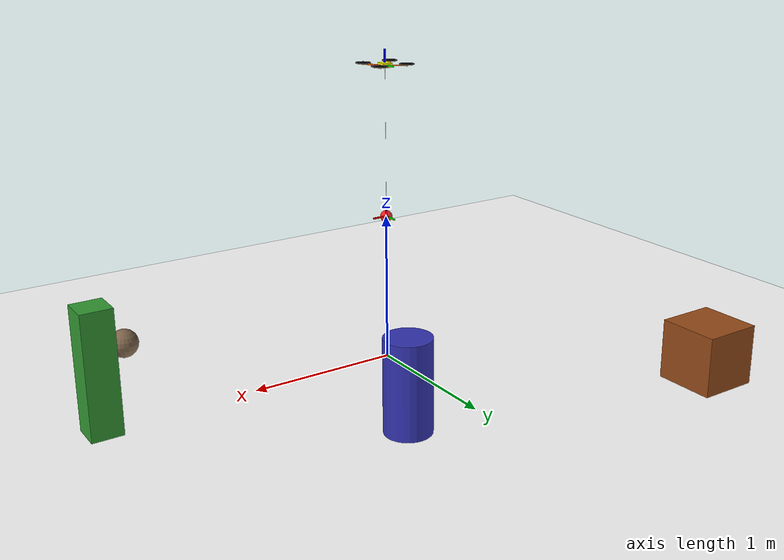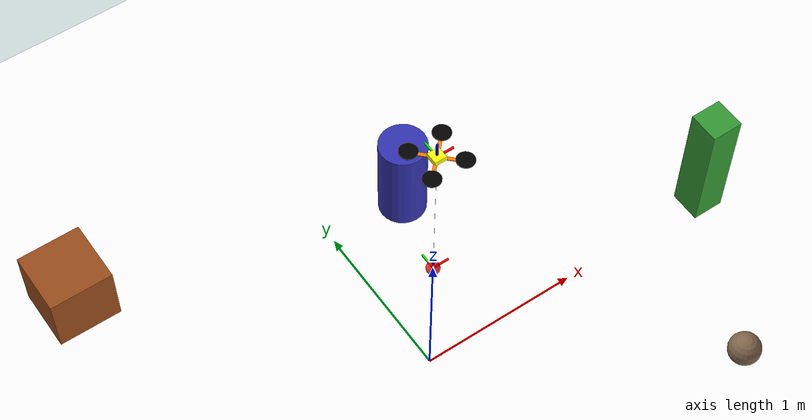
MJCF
<mujoco model="MuJoCo Model">
  <!--Compiler Options-->
  <compiler angle="radian"/>
  <option timestep="0.001" gravity="0 0 -9.81" density="1.225" viscosity="1.8e-05" integrator="RK4" jacobian="sparse">
    <flag energy="enable" contact="enable"/>
  </option>

  <asset>
  <texture name="texchecker" type="2d" builtin="checker" width="512" height="512"
           rgb1="0.8 0.8 0.8" rgb2="0.2 0.2 0.2" />
  <material name="matchecker" texture="texchecker" texrepeat="4 4"
            reflectance="0.2" shininess="0.5" specular="0.3" />
  </asset>

  <default>
        <site type="sphere" rgba="1 0 0 1" size="0.005"/>
        <tendon limited="true" width="0.0005" rgba="1 1 1 1"/>
        <geom friction=".2"/>
  </default>

  <worldbody>
    <light pos="0 0 1.5" dir="0 0 -1" directional="true"/>
    <geom name="floor" type="plane" size="20 20 0.1" material="matchecker"
      rgba="1 1 1 1" friction="1.0 0.005 0.0001" condim="3"/>

      <camera name="camera" pos="0 -5 3" euler="1.57 0 0"/>
    <!-- System Models -->
    <!-- Quadrotor body -->
    <body name="drone" pos="0 0 2" euler="0 0 0">
      <joint name="drone" type="free" damping="0.005" armature="0" pos="0 0 0"/>

      <!-- Core: bright yellow for visibility -->
      <geom name="core" type="box" pos="0 0 0" quat="1. 0. 0. 0" size="0.035 0.035 0.015"
            rgba="1.0 1.0 0.0 1.0" mass=".84" friction="1.0 0.005 0.0001"/>

      <!-- Arms: bright orange -->
      <geom name="a00" type="box" pos=".071 0.071 0.0" size="0.05 0.01 0.0025"
            quat=".924 0.0 0.0 0.383" rgba="1.0 0.5 0.0 1.0" mass=".025"/>
      <geom name="a10" type="box" pos=".071 -0.071 0.0" size="0.05 0.01 0.0025"
            quat=".383 0.0 0.0 0.924" rgba="1.0 0.5 0.0 1.0" mass=".025"/>
      <geom name="a20" type="box" pos="-0.071 -0.071 0.0" size="0.05 0.01 0.0025"
            quat="-.383 0.0 0.0 0.924" rgba="1.0 0.5 0.0 1.0" mass=".025"/>
      <geom name="a30" type="box" pos="-.071 0.071 0.0" size="0.05 0.01 0.0025"
            quat=".924 0.0 0.0 -0.383" rgba="1.0 0.5 0.0 1.0" mass=".025"/>

      <!-- Thrusters: black for contrast -->
      <geom name="thruster0" type="cylinder" pos="0.1 0.1 0.01" size="0.05 0.0025"
            quat="1.0 0.0 0.0 0." rgba="0.0 0.0 0.0 1.0" mass=".015"/>
      <geom name="thruster1" type="cylinder" pos="0.1 -0.1 0.01" size="0.05 0.0025"
            quat="1.0 0.0 0.0 0." rgba="0.0 0.0 0.0 1.0" mass=".015"/>
      <geom name="thruster2" type="cylinder" pos="-0.1 -0.1 0.01" size="0.05 0.0025"
            quat="1.0 0.0 0.0 0." rgba="0.0 0.0 0.0 1.0" mass=".015"/>
      <geom name="thruster3" type="cylinder" pos="-0.1 0.1 0.01" size="0.05 0.0025"
            quat="1.0 0.0 0.0 0." rgba="0.0 0.0 0.0 1.0" mass=".015"/>

      <!-- Axes remain unchanged -->
      <site name="qcX" type="box" pos="0.05 0.0 0.0" size="0.05 0.005 0.005"
            quat="1.0 0.0 0.0 0." rgba="1 0 0 1"/>
      <site name="qcY" type="box" pos="0.0 0.05 0.0" size="0.05 0.005 0.005"
            quat="0.707 0.0 0.0 0.707" rgba="0 1 0 1"/>
      <site name="qcZ" type="box" pos="0.0 0.0 0.05" size="0.05 0.005 0.005"
            quat="-0.707 0.0 0.707 0." rgba="0 0 1 1"/>

      <!-- Actuator sites: bright cyan (unchanged) -->
      <site name="thrust" type="box" pos="0 0 0" size="0.035 0.035 0.015" quat="1.0 0.0 0.0 0." rgba="0 1 1 1"/>
      <site name="rateX" type="box" pos="0 0 0" quat="1. 0. 0. 0." size="0.035 0.035 0.015" rgba="0 1 1 1"/>
      <site name="rateY" type="box" pos="0 0 0" quat="1. 0. 0. 0." size="0.035 0.035 0.015" rgba="0 1 1 1"/>
      <site name="rateZ" type="box" pos="0 0 0" quat="1. 0. 0. 0." size="0.035 0.035 0.015" rgba="0 1 1 1"/>
      <site name="imu" pos="0 0 0"/>
      <site name="payload_point_drone" pos="0.0 0.0 -0.00"/>
      <!-- Add bottom-facing camera here -->
      <camera name="bottom_camera" pos="0.035 0 -0.015" euler="0 0 -1.57"/>
    </body>

    <!-- Payloy only in xyz axis -->
    <body name="payload_ball" pos="0 0 1">
      <joint name="payload_ball" pos="0 0 0" type="free" damping="0.01"/>
      <geom name="payload_ball" size="0.04" type="sphere" rgba="1 0 0 0.8" mass="0.15" friction="1.0 0.005 0.0001"/>
      <site name="payload_point" pos="0.0 0.0 0.04"/>
      <!--  Representation of the body frame   -->
      <site name="load_X" type="box" pos="0.05 0.0 0.0" size="0.05 0.005 0.005" quat=" 1.0 0.0 0.0 0." rgba="1 0 0 1"/>
      <site name="load_Y" type="box" pos="0.0 0.05 0.0" size="0.05 0.005 0.005" quat=" 0.707 0.0 0.0 0.707" rgba="0 1 0 1"/>
      <site name="load_Z" type="box" pos="0.0 0.0 0.05" size="0.05 0.005 0.005" quat="-0.707 0.0 0.707 0." rgba="0 0 1 1"/>
    </body>

      <geom name="rock" type="sphere" pos="1.5 -1.0 0.1" size="0.1" rgba="0.5 0.4 0.3 1"/>
      <geom name="crate" type="box" pos="-1.5 1.5 0.2" size="0.2 0.2 0.2" rgba="0.6 0.3 0.1 1"/>
      <geom name="barrel" type="cylinder" pos="0.5 1.0 0.3" size="0.15 0.3" rgba="0.2 0.2 0.7 1"/>
      <geom name="tall_box" type="box" pos="2.0 0.0 0.4" size="0.1 0.1 0.4" rgba="0.2 0.6 0.2 1"/>

  </worldbody>

      <!--  Actuators of the system   -->
<actuator>
    <motor ctrllimited="true" ctrlrange="0 20.0" gear="0 0. 1. 0. 0. 0." site="thrust" name="body_thrust"/>
    <motor ctrllimited="true" ctrlrange="-0.5 0.5" gear="0. 0. 0. 1. 0. 0." site="rateX" name="x_moment"/>
    <motor ctrllimited="true" ctrlrange="-0.5 0.5" gear="0. 0. 0. 0. 1. 0." site="rateY" name="y_moment"/>
    <motor ctrllimited="true" ctrlrange="-0.5 0.5" gear="0. 0. 0. 0. 0. 1." site="rateZ" name="z_moment"/>
</actuator>

<tendon>
        <spatial name="rope1" limited="true" range="0 2">
            <site site="payload_point_drone"/>
            <site site="payload_point"/>
        </spatial>
</tendon>

<sensor>
    <framequat name="drone_quat" objtype="site" objname="imu" noise="0.00"/>
    <gyro name="drone_angular_velocity" site="imu" noise="0.001"/>
    <accelerometer name="drone_linacc" site="imu" noise="0.001"/>
    <framepos name="drone_position" objtype="site" objname="imu" noise="0.00"/>
    <velocimeter name="drone_linear_velocity" site="imu" noise="0.00"/>
    <tendonlimitfrc tendon="rope1" />
</sensor>
</mujoco>
